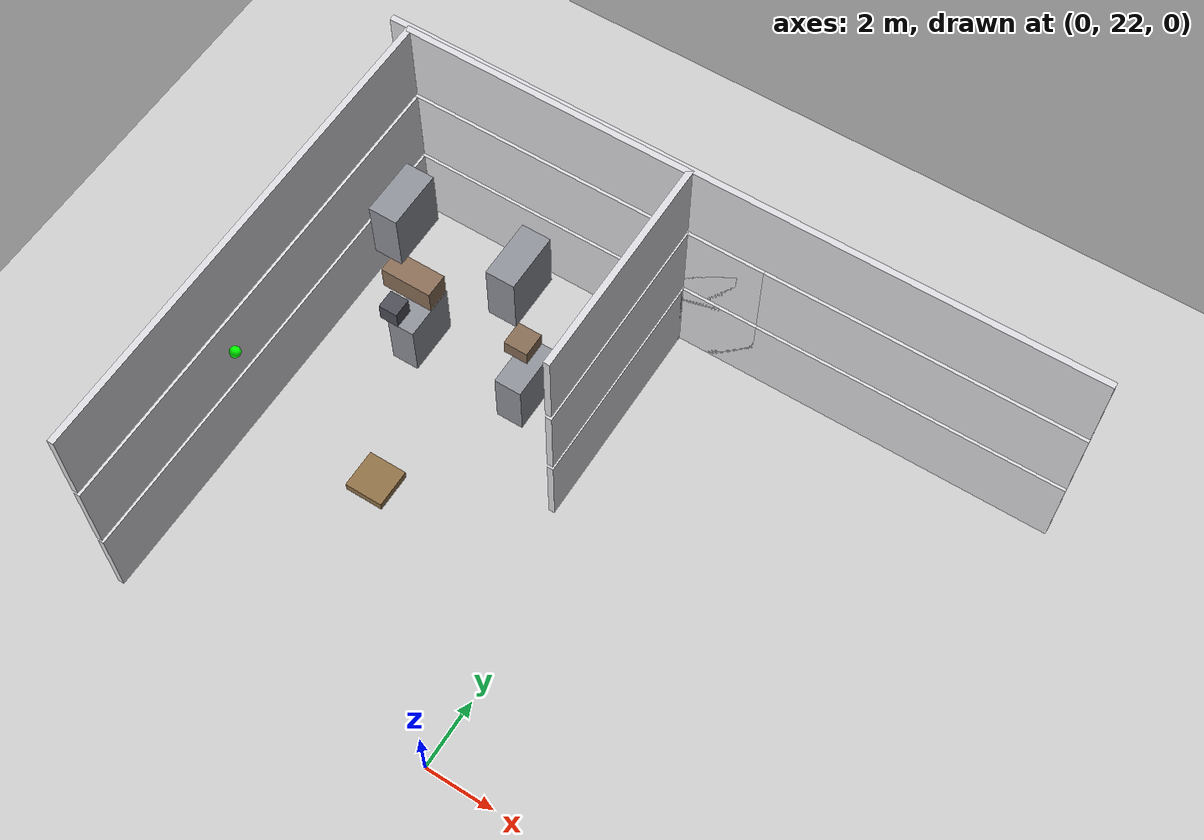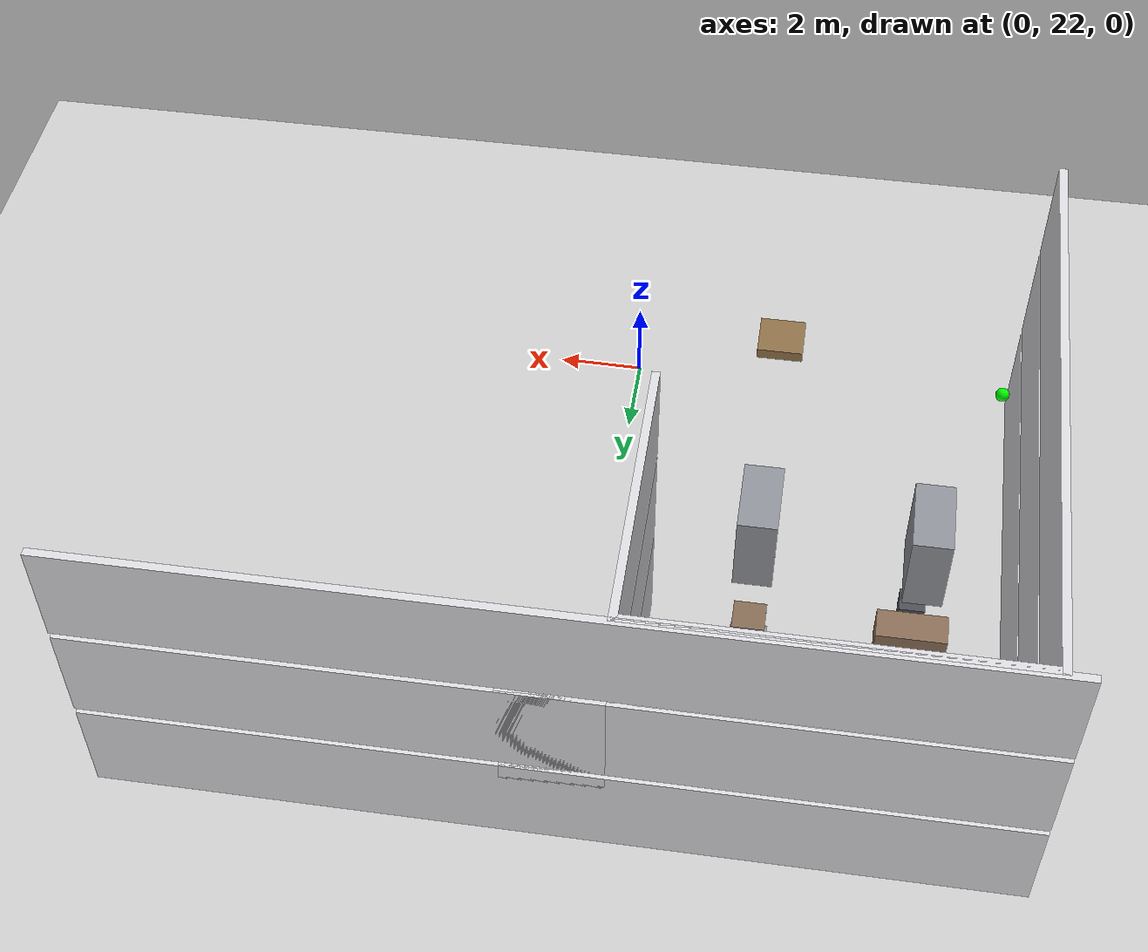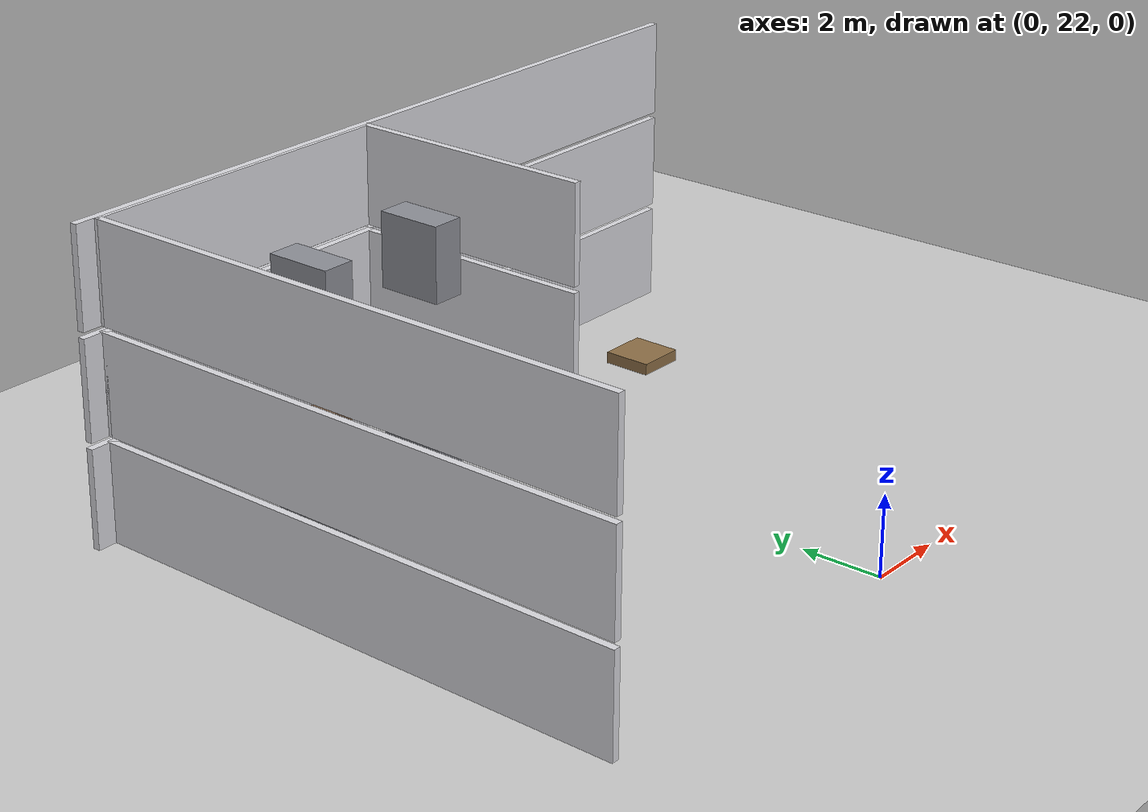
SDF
<sdf version="1.7">
 <world name="generated_world">
  <include><uri>model://sun</uri></include>
  <include><uri>model://ground_plane</uri></include>
  <model name="generated_building">
   <static>true</static>
   <link name="exterior_north_floor_0">
    <pose>0.0000 35.9100 1.2250 0.0000 0.0000 0.0000</pose>
    <collision name="exterior_north_floor_0_collision">
     <geometry><box><size>20.0000 0.1800 2.4500</size></box></geometry>
    </collision>
    <visual name="exterior_north_floor_0_visual">
     <geometry><box><size>20.0000 0.1800 2.4500</size></box></geometry>
     <material><ambient>0.86 0.86 0.88 1</ambient><diffuse>0.86 0.86 0.88 1</diffuse></material>
    </visual>
    <gravity>false</gravity>
   </link>
   <link name="north_end_wall_floor_0">
    <pose>0.0000 35.9100 1.2250 0.0000 0.0000 0.0000</pose>
    <collision name="north_end_wall_floor_0_collision">
     <geometry><box><size>2.2000 0.1800 2.4500</size></box></geometry>
    </collision>
    <visual name="north_end_wall_floor_0_visual">
     <geometry><box><size>2.2000 0.1800 2.4500</size></box></geometry>
     <material><ambient>0.86 0.86 0.88 1</ambient><diffuse>0.86 0.86 0.88 1</diffuse></material>
    </visual>
    <gravity>false</gravity>
   </link>
   <link name="floor_0_room_2_corridor_wall_upper">
    <pose>-1.1900 32.7025 1.2250 0.0000 0.0000 0.0000</pose>
    <collision name="floor_0_room_2_corridor_wall_upper_collision">
     <geometry><box><size>0.1800 6.4150 2.4500</size></box></geometry>
    </collision>
    <visual name="floor_0_room_2_corridor_wall_upper_visual">
     <geometry><box><size>0.1800 6.4150 2.4500</size></box></geometry>
     <material><ambient>0.86 0.86 0.88 1</ambient><diffuse>0.86 0.86 0.88 1</diffuse></material>
    </visual>
    <gravity>false</gravity>
   </link>
   <link name="floor_0_room_2_west_wall">
    <pose>-9.4100 28.8950 1.2250 0.0000 0.0000 0.0000</pose>
    <collision name="floor_0_room_2_west_wall_collision">
     <geometry><box><size>0.1800 14.0300 2.4500</size></box></geometry>
    </collision>
    <visual name="floor_0_room_2_west_wall_visual">
     <geometry><box><size>0.1800 14.0300 2.4500</size></box></geometry>
     <material><ambient>0.86 0.86 0.88 1</ambient><diffuse>0.86 0.86 0.88 1</diffuse></material>
    </visual>
    <gravity>false</gravity>
   </link>
   <link name="floor_0_room_2_north_wall">
    <pose>-5.3000 35.8200 1.2250 0.0000 0.0000 0.0000</pose>
    <collision name="floor_0_room_2_north_wall_collision">
     <geometry><box><size>8.4000 0.1800 2.4500</size></box></geometry>
    </collision>
    <visual name="floor_0_room_2_north_wall_visual">
     <geometry><box><size>8.4000 0.1800 2.4500</size></box></geometry>
     <material><ambient>0.86 0.86 0.88 1</ambient><diffuse>0.86 0.86 0.88 1</diffuse></material>
    </visual>
    <gravity>false</gravity>
   </link>
   <link name="floor_0_room_2_rack_a">
    <pose>-7.0000 31.9525 0.9000 0.0000 0.0000 0.0000</pose>
    <collision name="floor_0_room_2_rack_a_collision">
     <geometry><box><size>0.8000 1.6000 1.8000</size></box></geometry>
    </collision>
    <visual name="floor_0_room_2_rack_a_visual">
     <geometry><box><size>0.8000 1.6000 1.8000</size></box></geometry>
     <material><ambient>0.56 0.57 0.60 1</ambient><diffuse>0.56 0.57 0.60 1</diffuse></material>
    </visual>
    <gravity>false</gravity>
   </link>
   <link name="floor_0_room_2_rack_b">
    <pose>-3.6000 31.9525 0.9000 0.0000 0.0000 0.0000</pose>
    <collision name="floor_0_room_2_rack_b_collision">
     <geometry><box><size>0.8000 1.6000 1.8000</size></box></geometry>
    </collision>
    <visual name="floor_0_room_2_rack_b_visual">
     <geometry><box><size>0.8000 1.6000 1.8000</size></box></geometry>
     <material><ambient>0.56 0.57 0.60 1</ambient><diffuse>0.56 0.57 0.60 1</diffuse></material>
    </visual>
    <gravity>false</gravity>
   </link>
   <link name="exterior_north_floor_1">
    <pose>0.0000 35.9100 3.8250 0.0000 0.0000 0.0000</pose>
    <collision name="exterior_north_floor_1_collision">
     <geometry><box><size>20.0000 0.1800 2.4500</size></box></geometry>
    </collision>
    <visual name="exterior_north_floor_1_visual">
     <geometry><box><size>20.0000 0.1800 2.4500</size></box></geometry>
     <material><ambient>0.86 0.86 0.88 1</ambient><diffuse>0.86 0.86 0.88 1</diffuse></material>
    </visual>
    <gravity>false</gravity>
   </link>
   <link name="north_end_wall_floor_1">
    <pose>0.0000 35.9100 3.8250 0.0000 0.0000 0.0000</pose>
    <collision name="north_end_wall_floor_1_collision">
     <geometry><box><size>2.2000 0.1800 2.4500</size></box></geometry>
    </collision>
    <visual name="north_end_wall_floor_1_visual">
     <geometry><box><size>2.2000 0.1800 2.4500</size></box></geometry>
     <material><ambient>0.86 0.86 0.88 1</ambient><diffuse>0.86 0.86 0.88 1</diffuse></material>
    </visual>
    <gravity>false</gravity>
   </link>
   <link name="floor_1_room_2_corridor_wall_upper">
    <pose>-1.1900 32.7025 3.8250 0.0000 0.0000 0.0000</pose>
    <collision name="floor_1_room_2_corridor_wall_upper_collision">
     <geometry><box><size>0.1800 6.4150 2.4500</size></box></geometry>
    </collision>
    <visual name="floor_1_room_2_corridor_wall_upper_visual">
     <geometry><box><size>0.1800 6.4150 2.4500</size></box></geometry>
     <material><ambient>0.86 0.86 0.88 1</ambient><diffuse>0.86 0.86 0.88 1</diffuse></material>
    </visual>
    <gravity>false</gravity>
   </link>
   <link name="floor_1_room_2_west_wall">
    <pose>-9.4100 28.8950 3.8250 0.0000 0.0000 0.0000</pose>
    <collision name="floor_1_room_2_west_wall_collision">
     <geometry><box><size>0.1800 14.0300 2.4500</size></box></geometry>
    </collision>
    <visual name="floor_1_room_2_west_wall_visual">
     <geometry><box><size>0.1800 14.0300 2.4500</size></box></geometry>
     <material><ambient>0.86 0.86 0.88 1</ambient><diffuse>0.86 0.86 0.88 1</diffuse></material>
    </visual>
    <gravity>false</gravity>
   </link>
   <link name="floor_1_room_2_north_wall">
    <pose>-5.3000 35.8200 3.8250 0.0000 0.0000 0.0000</pose>
    <collision name="floor_1_room_2_north_wall_collision">
     <geometry><box><size>8.4000 0.1800 2.4500</size></box></geometry>
    </collision>
    <visual name="floor_1_room_2_north_wall_visual">
     <geometry><box><size>8.4000 0.1800 2.4500</size></box></geometry>
     <material><ambient>0.86 0.86 0.88 1</ambient><diffuse>0.86 0.86 0.88 1</diffuse></material>
    </visual>
    <gravity>false</gravity>
   </link>
   <link name="floor_1_room_2_desk">
    <pose>-7.0000 31.9525 3.0500 0.0000 0.0000 0.0000</pose>
    <collision name="floor_1_room_2_desk_collision">
     <geometry><box><size>1.5000 0.7000 0.7500</size></box></geometry>
    </collision>
    <visual name="floor_1_room_2_desk_visual">
     <geometry><box><size>1.5000 0.7000 0.7500</size></box></geometry>
     <material><ambient>0.54 0.43 0.34 1</ambient><diffuse>0.54 0.43 0.34 1</diffuse></material>
    </visual>
    <gravity>false</gravity>
   </link>
   <link name="floor_1_room_2_chair">
    <pose>-7.0000 31.0525 2.8800 0.0000 0.0000 0.0000</pose>
    <collision name="floor_1_room_2_chair_collision">
     <geometry><box><size>0.5500 0.5500 0.5500</size></box></geometry>
    </collision>
    <visual name="floor_1_room_2_chair_visual">
     <geometry><box><size>0.5500 0.5500 0.5500</size></box></geometry>
     <material><ambient>0.30 0.30 0.34 1</ambient><diffuse>0.30 0.30 0.34 1</diffuse></material>
    </visual>
    <gravity>false</gravity>
   </link>
   <link name="floor_1_room_2_side_table">
    <pose>-3.6000 31.9525 2.9200 0.0000 0.0000 0.0000</pose>
    <collision name="floor_1_room_2_side_table_collision">
     <geometry><box><size>0.7000 0.7000 0.4500</size></box></geometry>
    </collision>
    <visual name="floor_1_room_2_side_table_visual">
     <geometry><box><size>0.7000 0.7000 0.4500</size></box></geometry>
     <material><ambient>0.52 0.42 0.33 1</ambient><diffuse>0.52 0.42 0.33 1</diffuse></material>
    </visual>
    <gravity>false</gravity>
   </link>
   <link name="exterior_north_floor_2">
    <pose>0.0000 35.9100 6.4250 0.0000 0.0000 0.0000</pose>
    <collision name="exterior_north_floor_2_collision">
     <geometry><box><size>20.0000 0.1800 2.4500</size></box></geometry>
    </collision>
    <visual name="exterior_north_floor_2_visual">
     <geometry><box><size>20.0000 0.1800 2.4500</size></box></geometry>
     <material><ambient>0.86 0.86 0.88 1</ambient><diffuse>0.86 0.86 0.88 1</diffuse></material>
    </visual>
    <gravity>false</gravity>
   </link>
   <link name="floor_2_room_2_corridor_wall_upper">
    <pose>-1.1900 32.7025 6.4250 0.0000 0.0000 0.0000</pose>
    <collision name="floor_2_room_2_corridor_wall_upper_collision">
     <geometry><box><size>0.1800 6.4150 2.4500</size></box></geometry>
    </collision>
    <visual name="floor_2_room_2_corridor_wall_upper_visual">
     <geometry><box><size>0.1800 6.4150 2.4500</size></box></geometry>
     <material><ambient>0.86 0.86 0.88 1</ambient><diffuse>0.86 0.86 0.88 1</diffuse></material>
    </visual>
    <gravity>false</gravity>
   </link>
   <link name="floor_2_room_2_west_wall">
    <pose>-9.4100 28.8950 6.4250 0.0000 0.0000 0.0000</pose>
    <collision name="floor_2_room_2_west_wall_collision">
     <geometry><box><size>0.1800 14.0300 2.4500</size></box></geometry>
    </collision>
    <visual name="floor_2_room_2_west_wall_visual">
     <geometry><box><size>0.1800 14.0300 2.4500</size></box></geometry>
     <material><ambient>0.86 0.86 0.88 1</ambient><diffuse>0.86 0.86 0.88 1</diffuse></material>
    </visual>
    <gravity>false</gravity>
   </link>
   <link name="floor_2_room_2_north_wall">
    <pose>-5.3000 35.8200 6.4250 0.0000 0.0000 0.0000</pose>
    <collision name="floor_2_room_2_north_wall_collision">
     <geometry><box><size>8.4000 0.1800 2.4500</size></box></geometry>
    </collision>
    <visual name="floor_2_room_2_north_wall_visual">
     <geometry><box><size>8.4000 0.1800 2.4500</size></box></geometry>
     <material><ambient>0.86 0.86 0.88 1</ambient><diffuse>0.86 0.86 0.88 1</diffuse></material>
    </visual>
    <gravity>false</gravity>
   </link>
   <link name="floor_2_room_2_rack_a">
    <pose>-7.0000 31.9525 6.1000 0.0000 0.0000 0.0000</pose>
    <collision name="floor_2_room_2_rack_a_collision">
     <geometry><box><size>0.8000 1.6000 1.8000</size></box></geometry>
    </collision>
    <visual name="floor_2_room_2_rack_a_visual">
     <geometry><box><size>0.8000 1.6000 1.8000</size></box></geometry>
     <material><ambient>0.56 0.57 0.60 1</ambient><diffuse>0.56 0.57 0.60 1</diffuse></material>
    </visual>
    <gravity>false</gravity>
   </link>
   <link name="floor_2_room_2_rack_b">
    <pose>-3.6000 31.9525 6.1000 0.0000 0.0000 0.0000</pose>
    <collision name="floor_2_room_2_rack_b_collision">
     <geometry><box><size>0.8000 1.6000 1.8000</size></box></geometry>
    </collision>
    <visual name="floor_2_room_2_rack_b_visual">
     <geometry><box><size>0.8000 1.6000 1.8000</size></box></geometry>
     <material><ambient>0.56 0.57 0.60 1</ambient><diffuse>0.56 0.57 0.60 1</diffuse></material>
    </visual>
    <gravity>false</gravity>
   </link>
   <link name="floor_2_room_2_pallet">
    <pose>-3.6000 25.8375 5.3200 0.0000 0.0000 0.0000</pose>
    <collision name="floor_2_room_2_pallet_collision">
     <geometry><box><size>1.0000 1.0000 0.2400</size></box></geometry>
    </collision>
    <visual name="floor_2_room_2_pallet_visual">
     <geometry><box><size>1.0000 1.0000 0.2400</size></box></geometry>
     <material><ambient>0.56 0.44 0.28 1</ambient><diffuse>0.56 0.44 0.28 1</diffuse></material>
    </visual>
    <gravity>false</gravity>
   </link>
  </model>
  <model name="distractor_green_sphere_05">
   <static>true</static>
   <pose>-8.487813 26.847589 5.350000 0.000000 0.000000 0.000000</pose>
   <link name="link">
    <collision name="collision"><geometry><sphere><radius>0.150</radius></sphere></geometry></collision>
    <visual name="visual">
     <geometry><sphere><radius>0.150</radius></sphere></geometry>
     <material><ambient>0.0 1.0 0.0 1.0</ambient><diffuse>0.0 1.0 0.0 1.0</diffuse></material>
    </visual>
   </link>
  </model>
 </world>
</sdf>
